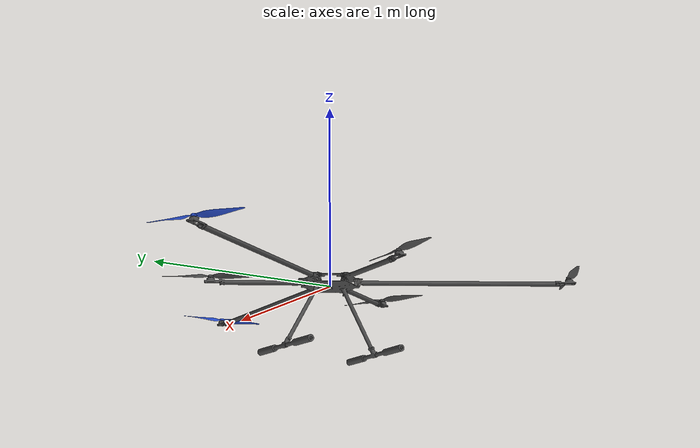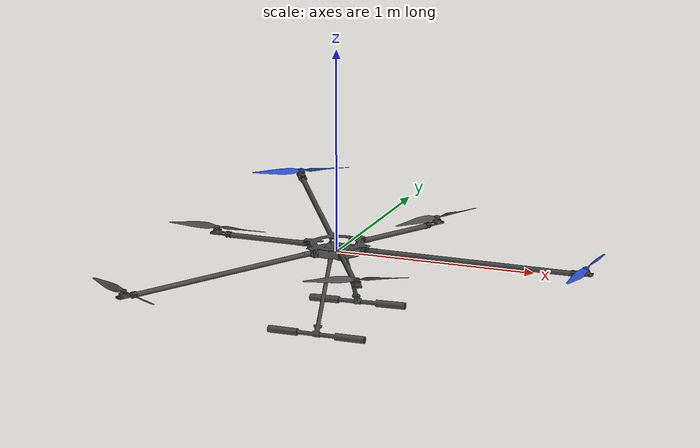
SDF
<!-- DO NOT EDIT: Generated from iris.sdf.jinja -->
<sdf version='1.6'>
  <model name='trizd1250'>
    <link name='base_link'>
      <pose>0 0 0 0 0 0</pose>
      <pose frame=''>0 0 0 0 -0 0</pose>
      <inertial>
        <pose frame=''>-9e-06 2e-06 -0.1087 0 -0 0</pose>
        <mass>1.4165</mass>
        <inertia>
          <ixx>0.16197</ixx>
          <ixy>-0.00014607</ixy>
          <ixz>-8.6456e-05</ixz>
          <iyy>0.1752</iyy>
          <iyz>-2.062e-06</iyz>
          <izz>0.33609</izz>
        </inertia>
      </inertial>
      <collision name='base_link_inertia_collision'>
        <pose>0 0 0 0 0 0</pose>
        <geometry>
          <mesh>
            <scale>1 1 1</scale>
            <uri>model://trizd1250/meshes/base_link_collision.dae</uri>
          </mesh>
        </geometry>
        <surface>
          <contact>
            <ode>
              <min_depth>0.001</min_depth>
              <max_vel>0</max_vel>
            </ode>
          </contact>
          <friction>
            <ode/>
          </friction>
        </surface>
      </collision>
      <visual name='base_link_inertia_visual'>
        <pose frame=''>0 0 0 0 -0 0</pose>
        <geometry>
          <mesh>
            <scale>1 1 1</scale>
            <uri>model://trizd1250/meshes/base_link.STL</uri>
          </mesh>
        </geometry>
        <material>
          <script>
            <name>Gazebo/DarkGrey</name>
            <uri>file://media/materials/scripts/gazebo.material</uri>
          </script>
        </material>
      </visual>
      <gravity>1</gravity>
      <velocity_decay/>
    </link>
    <link name='/imu_link'>
      <pose>0 0 0 0 0 0</pose>
      <inertial>
        <pose>0 0 0 0 0 0</pose>
        <mass>0.015</mass>
        <inertia>
          <ixx>1e-05</ixx>
          <ixy>0</ixy>
          <ixz>0</ixz>
          <iyy>1e-05</iyy>
          <iyz>0</iyz>
          <izz>1e-05</izz>
        </inertia>
      </inertial>
    </link>
    <joint name='/imu_joint' type='revolute'>
      <child>/imu_link</child>
      <parent>base_link</parent>
      <axis>
        <xyz>1 0 0</xyz>
        <limit>
          <lower>0</lower>
          <upper>0</upper>
          <effort>0</effort>
          <velocity>0</velocity>
        </limit>
        <dynamics>
          <spring_reference>0</spring_reference>
          <spring_stiffness>0</spring_stiffness>
        </dynamics>
        <use_parent_model_frame>1</use_parent_model_frame>
      </axis>
    </joint>
    <link name='rotor_0'>
      <pose>1.2577 0 0.058534 0 -0 0</pose>
      <inertial>
        <pose>-0 -0 -0.005008 0 -0 0</pose>
        <mass>0.079813</mass>
        <inertia>
          <ixx>0.0010652</ixx>
          <ixy>-5.0267e-05</ixy>
          <ixz>-1.5725e-11</ixz>
          <iyy>7.6855e-06</iyy>
          <iyz>-2.4434e-10</iyz>
          <izz>0.0010703</izz>
        </inertia>
      </inertial>
      <collision name='rotor_0_collision'>
        <pose>0 0 0 0 0 0</pose>
        <geometry>
          <mesh>
            <scale>1 1 1</scale>
            <uri>model://trizd1250/meshes/link1_collision.dae</uri>
          </mesh>
        </geometry>
        <surface>
          <contact>
            <ode/>
          </contact>
          <friction>
            <ode/>
          </friction>
        </surface>
      </collision>
      <visual name='rotor_0_visual'>
        <pose>0 0 0 0 0 0</pose>
        <geometry>
          <mesh>
            <scale>1 1 1</scale>
            <uri>model://trizd1250/meshes/link1.STL</uri>
          </mesh>
        </geometry>
        <material>
          <script>
            <name>Gazebo/Blue</name>
            <uri>file://media/materials/scripts/gazebo.material</uri>
          </script>
        </material>
      </visual>
      <gravity>1</gravity>
      <velocity_decay/>
    </link>
    <joint name='rotor_0_joint' type='revolute'>
      <child>rotor_0</child>
      <parent>base_link</parent>
      <axis>
        <xyz>0 0 1</xyz>
        <limit>
          <lower>-1e+16</lower>
          <upper>1e+16</upper>
        </limit>
        <dynamics>
          <spring_reference>0</spring_reference>
          <spring_stiffness>0</spring_stiffness>
        </dynamics>
        <use_parent_model_frame>0</use_parent_model_frame>
      </axis>
    </joint>
    <link name='rotor_1'>
      <pose>-0.62772 0 0.058534 0 -0 0</pose>
      <inertial>
        <pose>-0 -0 -0.004993 0 -0 0</pose>
        <mass>0.079808</mass>
        <inertia>
          <ixx>5.6516e-06</ixx>
          <ixy>-1.9286e-05</ixy>
          <ixz>2.4327e-10</ixz>
          <iyy>0.0010672</iyy>
          <iyz>8.6538e-12</iyz>
          <izz>0.0010703</izz>
        </inertia>
      </inertial>
      <collision name='rotor_1_collision'>
        <pose>0 0 0 0 0 0</pose>
        <geometry>
          <mesh>
            <scale>1 1 1</scale>
            <uri>model://trizd1250/meshes/link2_collision.dae</uri>
          </mesh>
        </geometry>
        <surface>
          <contact>
            <ode/>
          </contact>
          <friction>
            <ode/>
          </friction>
        </surface>
      </collision>
      <visual name='rotor_1_visual'>
        <pose>0 0 0 0 0 0</pose>
        <geometry>
          <mesh>
            <scale>1 1 1</scale>
            <uri>model://trizd1250/meshes/link2.STL</uri>
          </mesh>
        </geometry>
        <material>
          <script>
            <name>Gazebo/DarkGrey</name>
            <uri>file://media/materials/scripts/gazebo.material</uri>
          </script>
        </material>
      </visual>
      <gravity>1</gravity>
      <velocity_decay/>
    </link>
    <joint name='rotor_1_joint' type='revolute'>
      <child>rotor_1</child>
      <parent>base_link</parent>
      <axis>
        <xyz>0 0 1</xyz>
        <limit>
          <lower>-1e+16</lower>
          <upper>1e+16</upper>
        </limit>
        <dynamics>
          <spring_reference>0</spring_reference>
          <spring_stiffness>0</spring_stiffness>
        </dynamics>
        <use_parent_model_frame>0</use_parent_model_frame>
      </axis>
    </joint>
    <link name='rotor_2'>
      <pose>-0.62886 1.0892 0.058534 0 -0 0</pose>
      <inertial>
        <pose>1e-06 1e-06 -0.005008 0 -0 0</pose>
        <mass>0.079807</mass>
        <inertia>
          <ixx>0.00030472</ixx>
          <ixy>-0.00047792</ixy>
          <ixz>5.0863e-10</ixz>
          <iyy>0.00076811</iyy>
          <iyz>4.4111e-10</iyz>
          <izz>0.0010703</izz>
        </inertia>
      </inertial>
      <collision name='rotor_2_collision'>
        <pose>0 0 0 0 0 0</pose>
        <geometry>
          <mesh>
            <scale>1 1 1</scale>
            <uri>model://trizd1250/meshes/link3_collision.dae</uri>
          </mesh>
        </geometry>
        <surface>
          <contact>
            <ode/>
          </contact>
          <friction>
            <ode/>
          </friction>
        </surface>
      </collision>
      <visual name='rotor_2_visual'>
        <pose>0 0 0 0 0 0</pose>
        <geometry>
          <mesh>
            <scale>1 1 1</scale>
            <uri>model://trizd1250/meshes/link3.STL</uri>
          </mesh>
        </geometry>
        <material>
          <script>
            <name>Gazebo/Blue</name>
            <uri>file://media/materials/scripts/gazebo.material</uri>
          </script>
        </material>
      </visual>
      <gravity>1</gravity>
      <velocity_decay/>
    </link>
    <joint name='rotor_2_joint' type='revolute'>
      <child>rotor_2</child>
      <parent>base_link</parent>
      <axis>
        <xyz>0 0 1</xyz>
        <limit>
          <lower>-1e+16</lower>
          <upper>1e+16</upper>
        </limit>
        <dynamics>
          <spring_reference>0</spring_reference>
          <spring_stiffness>0</spring_stiffness>
        </dynamics>
        <use_parent_model_frame>0</use_parent_model_frame>
      </axis>
    </joint>

    <link name='rotor_3'>
      <pose>0.31386 -0.54363 0.058534 0 -0 0</pose>
      <inertial>
        <pose>0 0 -0.004993 0 -0 0</pose>
        <mass>0.079808</mass>
        <inertia>
          <ixx>0.00023882</ixx>
          <ixy>-0.00043991</ixy>
          <ixz>-2.1342e-10</ixz>
          <iyy>0.000834</iyy>
          <iyz>-1.1821e-10</iyz>
          <izz>0.0010703</izz>
        </inertia>
      </inertial>
      <collision name='rotor_3_collision'>
        <pose>0 0 0 0 0 0</pose>
        <geometry>
          <mesh>
            <scale>1 1 1</scale>
            <uri>model://trizd1250/meshes/link4_collision.dae</uri>
          </mesh>
        </geometry>
        <surface>
          <contact>
            <ode/>
          </contact>
          <friction>
            <ode/>
          </friction>
        </surface>
      </collision>
      <visual name='rotor_3_visual'>
        <pose>0 0 0 0 0 0</pose>
        <geometry>
          <mesh>
            <scale>1 1 1</scale>
            <uri>model://trizd1250/meshes/link4.STL</uri>
          </mesh>
        </geometry>
        <material>
          <script>
            <name>Gazebo/DarkGrey</name>
            <uri>file://media/materials/scripts/gazebo.material</uri>
          </script>
        </material>
      </visual>
      <gravity>1</gravity>
      <velocity_decay/>
    </link>
    <joint name='rotor_3_joint' type='revolute'>
      <child>rotor_3</child>
      <parent>base_link</parent>
      <axis>
        <xyz>0 0 1</xyz>
        <limit>
          <lower>-1e+16</lower>
          <upper>1e+16</upper>
        </limit>
        <dynamics>
          <spring_reference>0</spring_reference>
          <spring_stiffness>0</spring_stiffness>
        </dynamics>
        <use_parent_model_frame>0</use_parent_model_frame>
      </axis>
    </joint>

    <link name='rotor_4'>
      <pose>0.31386 0.54363 0.058534 0 -0 0</pose>
      <inertial>
        <pose>0 0 -0.004992 0 -0 0</pose>
        <mass>0.079808</mass>
        <inertia>
          <ixx>0.00079152</ixx>
          <ixy>-0.00046584</ixy>
          <ixz>-4.1391e-10</ixz>
          <iyy>0.00028132</iyy>
          <iyz>-4.9882e-10</iyz>
          <izz>0.0010703</izz>
        </inertia>
      </inertial>
      <collision name='rotor_4_collision'>
        <pose>0 0 0 0 0 0</pose>
        <geometry>
          <mesh>
            <scale>1 1 1</scale>
            <uri>model://trizd1250/meshes/link5_collision.dae</uri>
          </mesh>
        </geometry>
        <surface>
          <contact>
            <ode/>
          </contact>
          <friction>
            <ode/>
          </friction>
        </surface>
      </collision>
      <visual name='rotor_4_visual'>
        <pose>0 0 0 0 0 0</pose>
        <geometry>
          <mesh>
            <scale>1 1 1</scale>
            <uri>model://trizd1250/meshes/link5.STL</uri>
          </mesh>
        </geometry>
        <material>
          <script>
            <name>Gazebo/DarkGrey</name>
            <uri>file://media/materials/scripts/gazebo.material</uri>
          </script>
        </material>
      </visual>
      <gravity>1</gravity>
      <velocity_decay/>
    </link>
    <joint name='rotor_4_joint' type='revolute'>
      <child>rotor_4</child>
      <parent>base_link</parent>
      <axis>
        <xyz>0 0 1</xyz>
        <limit>
          <lower>-1e+16</lower>
          <upper>1e+16</upper>
        </limit>
        <dynamics>
          <spring_reference>0</spring_reference>
          <spring_stiffness>0</spring_stiffness>
        </dynamics>
        <use_parent_model_frame>0</use_parent_model_frame>
      </axis>
    </joint>

    <link name='rotor_5'>
      <pose>-0.62886 -1.0892 0.058534 0 -0 0</pose>
      <inertial>
        <pose>0 -0 -0.005008 0 -0 0</pose>
        <mass>0.079814</mass>
        <inertia>
          <ixx>0.00030828</ixx>
          <ixy>0.00047962</ixy>
          <ixz>1.87e-10</ixz>
          <iyy>0.00076454</iyy>
          <iyz>1.2204e-11</iyz>
          <izz>0.0010703</izz>
        </inertia>
      </inertial>
      <collision name='rotor_5_collision'>
        <pose>0 0 0 0 0 0</pose>
        <geometry>
          <mesh>
            <scale>1 1 1</scale>
            <uri>model://trizd1250/meshes/link6_collision.dae</uri>
          </mesh>
        </geometry>
        <surface>
          <contact>
            <ode/>
          </contact>
          <friction>
            <ode/>
          </friction>
        </surface>
      </collision>
      <visual name='rotor_5_visual'>
        <pose>0 0 0 0 0 0</pose>
        <geometry>
          <mesh>
            <scale>1 1 1</scale>
            <uri>model://trizd1250/meshes/link6.STL</uri>
          </mesh>
        </geometry>
        <material>
          <script>
            <name>Gazebo/DarkGrey</name>
            <uri>file://media/materials/scripts/gazebo.material</uri>
          </script>
        </material>
      </visual>
      <gravity>1</gravity>
      <velocity_decay/>
    </link>
    <joint name='rotor_5_joint' type='revolute'>
      <child>rotor_5</child>
      <parent>base_link</parent>
      <axis>
        <xyz>0 0 1</xyz>
        <limit>
          <lower>-1e+16</lower>
          <upper>1e+16</upper>
        </limit>
        <dynamics>
          <spring_reference>0</spring_reference>
          <spring_stiffness>0</spring_stiffness>
        </dynamics>
        <use_parent_model_frame>0</use_parent_model_frame>
      </axis>
    </joint>

    <plugin name='rosbag' filename='libgazebo_multirotor_base_plugin.so'>
      <robotNamespace/>
      <linkName>base_link</linkName>
      <rotorVelocitySlowdownSim>10</rotorVelocitySlowdownSim>
    </plugin>

    <plugin name='front_right_motor_model' filename='libgazebo_motor_model.so'>
      <robotNamespace></robotNamespace>
      <jointName>rotor_0_joint</jointName>
      <linkName>rotor_0</linkName>
      <turningDirection>cw</turningDirection>
      <timeConstantUp>0.0125</timeConstantUp>
      <timeConstantDown>0.025</timeConstantDown>
      <maxRotVelocity>1500</maxRotVelocity>
      <motorConstant>8.54858e-06</motorConstant>
      <momentConstant>0.06</momentConstant>
      <commandSubTopic>/gazebo/command/motor_speed</commandSubTopic>
      <motorNumber>0</motorNumber>
      <rotorDragCoefficient>0.000806428</rotorDragCoefficient>
      <rollingMomentCoefficient>1e-06</rollingMomentCoefficient>
      <motorSpeedPubTopic>/motor_speed/0</motorSpeedPubTopic>
      <rotorVelocitySlowdownSim>10</rotorVelocitySlowdownSim>
    </plugin>
    <plugin name='back_left_motor_model' filename='libgazebo_motor_model.so'>
      <robotNamespace></robotNamespace>
      <jointName>rotor_1_joint</jointName>
      <linkName>rotor_1</linkName>
      <turningDirection>ccw</turningDirection>
      <timeConstantUp>0.0125</timeConstantUp>
      <timeConstantDown>0.025</timeConstantDown>
      <maxRotVelocity>1500</maxRotVelocity>
      <motorConstant>8.54858e-06</motorConstant>
      <momentConstant>0.06</momentConstant>
      <commandSubTopic>/gazebo/command/motor_speed</commandSubTopic>
      <motorNumber>1</motorNumber>
      <rotorDragCoefficient>0.000806428</rotorDragCoefficient>
      <rollingMomentCoefficient>1e-06</rollingMomentCoefficient>
      <motorSpeedPubTopic>/motor_speed/1</motorSpeedPubTopic>
      <rotorVelocitySlowdownSim>10</rotorVelocitySlowdownSim>
    </plugin>
    <plugin name='front_left_motor_model' filename='libgazebo_motor_model.so'>
      <robotNamespace></robotNamespace>
      <jointName>rotor_2_joint</jointName>
      <linkName>rotor_2</linkName>
      <turningDirection>cw</turningDirection>
      <timeConstantUp>0.0125</timeConstantUp>
      <timeConstantDown>0.025</timeConstantDown>
      <maxRotVelocity>1500</maxRotVelocity>
      <motorConstant>8.54858e-06</motorConstant>
      <momentConstant>0.06</momentConstant>
      <commandSubTopic>/gazebo/command/motor_speed</commandSubTopic>
      <motorNumber>2</motorNumber>
      <rotorDragCoefficient>0.000806428</rotorDragCoefficient>
      <rollingMomentCoefficient>1e-06</rollingMomentCoefficient>
      <motorSpeedPubTopic>/motor_speed/2</motorSpeedPubTopic>
      <rotorVelocitySlowdownSim>10</rotorVelocitySlowdownSim>
    </plugin>
    <plugin name='back_right_motor_model' filename='libgazebo_motor_model.so'>
      <robotNamespace></robotNamespace>
      <jointName>rotor_3_joint</jointName>
      <linkName>rotor_3</linkName>
      <turningDirection>ccw</turningDirection>
      <timeConstantUp>0.0125</timeConstantUp>
      <timeConstantDown>0.025</timeConstantDown>
      <maxRotVelocity>1500</maxRotVelocity>
      <motorConstant>8.54858e-06</motorConstant>
      <momentConstant>0.06</momentConstant>
      <commandSubTopic>/gazebo/command/motor_speed</commandSubTopic>
      <motorNumber>3</motorNumber>
      <rotorDragCoefficient>0.000806428</rotorDragCoefficient>
      <rollingMomentCoefficient>1e-06</rollingMomentCoefficient>
      <motorSpeedPubTopic>/motor_speed/3</motorSpeedPubTopic>
      <rotorVelocitySlowdownSim>10</rotorVelocitySlowdownSim>
    </plugin>
    <plugin name='back_left_motor_model' filename='libgazebo_motor_model.so'>
      <robotNamespace></robotNamespace>
      <jointName>rotor_4_joint</jointName>
      <linkName>rotor_4</linkName>
      <turningDirection>ccw</turningDirection>
      <timeConstantUp>0.0125</timeConstantUp>
      <timeConstantDown>0.025</timeConstantDown>
      <maxRotVelocity>1500</maxRotVelocity>
      <motorConstant>8.54858e-06</motorConstant>
      <momentConstant>0.06</momentConstant>
      <commandSubTopic>/gazebo/command/motor_speed</commandSubTopic>
      <motorNumber>4</motorNumber>
      <rotorDragCoefficient>0.000806428</rotorDragCoefficient>
      <rollingMomentCoefficient>1e-06</rollingMomentCoefficient>
      <motorSpeedPubTopic>/motor_speed/4</motorSpeedPubTopic>
      <rotorVelocitySlowdownSim>10</rotorVelocitySlowdownSim>
    </plugin>
    <plugin name='front_left_motor_model' filename='libgazebo_motor_model.so'>
      <robotNamespace></robotNamespace>
      <jointName>rotor_5_joint</jointName>
      <linkName>rotor_5</linkName>
      <turningDirection>cw</turningDirection>
      <timeConstantUp>0.0125</timeConstantUp>
      <timeConstantDown>0.025</timeConstantDown>
      <maxRotVelocity>1500</maxRotVelocity>
      <motorConstant>8.54858e-06</motorConstant>
      <momentConstant>0.06</momentConstant>
      <commandSubTopic>/gazebo/command/motor_speed</commandSubTopic>
      <motorNumber>5</motorNumber>
      <rotorDragCoefficient>0.000806428</rotorDragCoefficient>
      <rollingMomentCoefficient>1e-06</rollingMomentCoefficient>
      <motorSpeedPubTopic>/motor_speed/5</motorSpeedPubTopic>
      <rotorVelocitySlowdownSim>10</rotorVelocitySlowdownSim>
    </plugin>

    <include>
      <uri>model://gps</uri>
      <pose>0.1 0 0 0 0 0</pose>
      <name>gps0</name>
    </include>
    <joint name='gps0_joint' type='fixed'>
      <child>gps0::link</child>
      <parent>base_link</parent>
    </joint>

    <plugin name='groundtruth_plugin' filename='libgazebo_groundtruth_plugin.so'>
      <robotNamespace/>
    </plugin>

    <plugin name='magnetometer_plugin' filename='libgazebo_magnetometer_plugin.so'>
      <robotNamespace/>
      <pubRate>100</pubRate>
      <noiseDensity>0.0004</noiseDensity>
      <randomWalk>6.4e-06</randomWalk>
      <biasCorrelationTime>600</biasCorrelationTime>
      <magTopic>/mag</magTopic>
    </plugin>

    <plugin name='barometer_plugin' filename='libgazebo_barometer_plugin.so'>
      <robotNamespace/>
      <pubRate>50</pubRate>
      <baroTopic>/baro</baroTopic>
      <baroDriftPaPerSec>0</baroDriftPaPerSec>
    </plugin>

    <plugin name='mavlink_interface' filename='libgazebo_mavlink_interface.so'>
      <robotNamespace/>
      <imuSubTopic>/imu</imuSubTopic>
      <magSubTopic>/mag</magSubTopic>
      <baroSubTopic>/baro</baroSubTopic>
      <mavlink_addr>INADDR_ANY</mavlink_addr>
      <mavlink_tcp_port>4560</mavlink_tcp_port>
      <mavlink_udp_port>14560</mavlink_udp_port>
      <serialEnabled>0</serialEnabled>
      <serialDevice>/dev/ttyACM0</serialDevice>
      <baudRate>921600</baudRate>
      <qgc_addr>INADDR_ANY</qgc_addr>
      <qgc_udp_port>14550</qgc_udp_port>
      <sdk_addr>INADDR_ANY</sdk_addr>
      <sdk_udp_port>14540</sdk_udp_port>
      <hil_mode>0</hil_mode>
      <hil_state_level>0</hil_state_level>
      <send_vision_estimation>0</send_vision_estimation>
      <send_odometry>1</send_odometry>
      <enable_lockstep>1</enable_lockstep>
      <use_tcp>1</use_tcp>
      <motorSpeedCommandPubTopic>/gazebo/command/motor_speed</motorSpeedCommandPubTopic>
      <control_channels>
        <channel name='rotor0'>
          <input_index>0</input_index>
          <input_offset>0</input_offset>
          <input_scaling>1500</input_scaling>
          <zero_position_disarmed>0</zero_position_disarmed>
          <zero_position_armed>100</zero_position_armed>
          <joint_control_type>velocity</joint_control_type>
        </channel>
        <channel name='rotor1'>
          <input_index>1</input_index>
          <input_offset>0</input_offset>
          <input_scaling>1500</input_scaling>
          <zero_position_disarmed>0</zero_position_disarmed>
          <zero_position_armed>100</zero_position_armed>
          <joint_control_type>velocity</joint_control_type>
        </channel>
        <channel name='rotor2'>
          <input_index>2</input_index>
          <input_offset>0</input_offset>
          <input_scaling>1500</input_scaling>
          <zero_position_disarmed>0</zero_position_disarmed>
          <zero_position_armed>100</zero_position_armed>
          <joint_control_type>velocity</joint_control_type>
        </channel>
        <channel name='rotor3'>
          <input_index>3</input_index>
          <input_offset>0</input_offset>
          <input_scaling>1500</input_scaling>
          <zero_position_disarmed>0</zero_position_disarmed>
          <zero_position_armed>100</zero_position_armed>
          <joint_control_type>velocity</joint_control_type>
        </channel>
        <channel name='rotor4'>
          <input_index>4</input_index>
          <input_offset>0</input_offset>
          <input_scaling>1500</input_scaling>
          <zero_position_disarmed>0</zero_position_disarmed>
          <zero_position_armed>100</zero_position_armed>
          <joint_control_type>velocity</joint_control_type>
        </channel>
        <channel name='rotor5'>
          <input_index>5</input_index>
          <input_offset>0</input_offset>
          <input_scaling>1500</input_scaling>
          <zero_position_disarmed>0</zero_position_disarmed>
          <zero_position_armed>100</zero_position_armed>
          <joint_control_type>velocity</joint_control_type>
        </channel>

      </control_channels>
    </plugin>
    <static>0</static>

    <plugin name='rotors_gazebo_imu_plugin' filename='libgazebo_imu_plugin.so'>
      <robotNamespace/>
      <linkName>/imu_link</linkName>
      <imuTopic>/imu</imuTopic>
      <gyroscopeNoiseDensity>0.00018665</gyroscopeNoiseDensity>
      <gyroscopeRandomWalk>3.8785e-05</gyroscopeRandomWalk>
      <gyroscopeBiasCorrelationTime>1000.0</gyroscopeBiasCorrelationTime>
      <gyroscopeTurnOnBiasSigma>0.0087</gyroscopeTurnOnBiasSigma>
      <accelerometerNoiseDensity>0.00186</accelerometerNoiseDensity>
      <accelerometerRandomWalk>0.006</accelerometerRandomWalk>
      <accelerometerBiasCorrelationTime>300.0</accelerometerBiasCorrelationTime>
      <accelerometerTurnOnBiasSigma>0.196</accelerometerTurnOnBiasSigma>
    </plugin>
  </model>
</sdf>

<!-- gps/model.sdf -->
<sdf version="1.6">
  <model name="gps">
    <link name="link">
      <pose>0 0 0 0 0 0</pose>
      <inertial>
        <pose>0 0 0 0 0 0</pose>
        <mass>0.015</mass>
        <inertia>
          <ixx>1e-05</ixx>
          <ixy>0</ixy>
          <ixz>0</ixz>
          <iyy>1e-05</iyy>
          <iyz>0</iyz>
          <izz>1e-05</izz>
        </inertia>
      </inertial>
      <visual name="visual">
        <geometry>
          <cylinder>
            <radius>0.01</radius>
            <length>0.002</length>
          </cylinder>
        </geometry>
        <material>
          <script>
            <name>Gazebo/Black</name>
            <uri>file://usr/share/gz/gz-sim8/media/gazebo.material</uri>
          </script>
        </material>
      </visual>
      <sensor name="gps" type="gps">
        <pose>0 0 0 0 0 0</pose>
        <update_rate>5.0</update_rate>
        <always_on>true</always_on>
        <visualize>false</visualize>
        <!-- GpsSensor noise currently not used -->
        <plugin name="gps_plugin" filename="libgazebo_gps_plugin.so">
          <robotNamespace></robotNamespace>
          <gpsNoise>true</gpsNoise>
          <gpsXYRandomWalk>2.0</gpsXYRandomWalk>
          <gpsZRandomWalk>4.0</gpsZRandomWalk>
          <gpsXYNoiseDensity>2.0e-4</gpsXYNoiseDensity>
          <gpsZNoiseDensity>4.0e-4</gpsZNoiseDensity>
          <gpsVXYNoiseDensity>0.2</gpsVXYNoiseDensity>
          <gpsVZNoiseDensity>0.4</gpsVZNoiseDensity>
        </plugin>
      </sensor>
    </link>
  </model>
</sdf>
